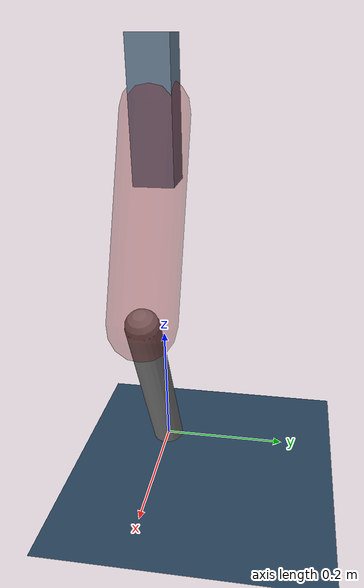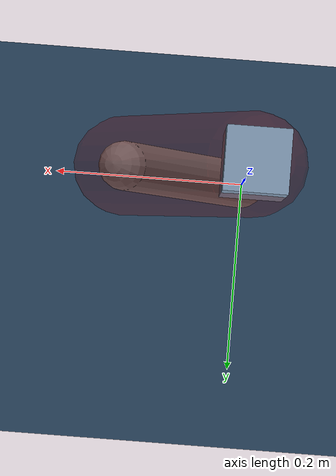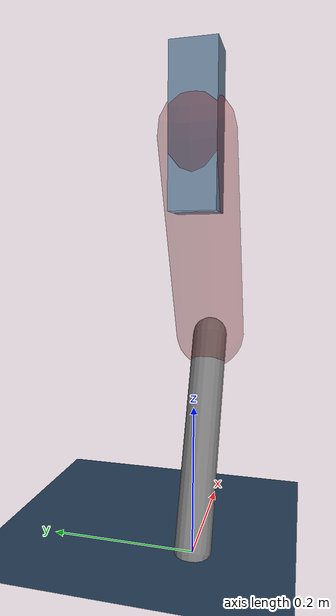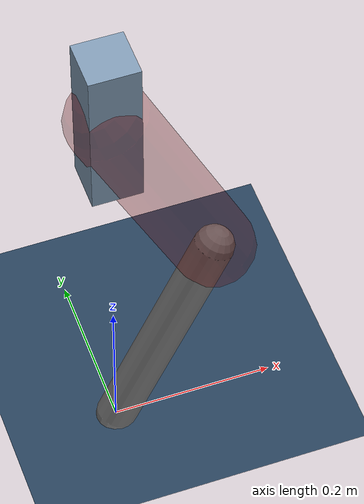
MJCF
<mujoco model="Hopper2D">
	<compiler inertiafromgeom="true" angle="radian" />
	<option timestep="0.001" integrator="implicit" cone="elliptic" solver="Newton" tolerance="1e-10" />

	<default>
		<geom contype="1" conaffinity="1" condim="3" friction="2 0.005 0.0001" solref="0.005 1" />
		<joint limited="true" damping="0.1" />
	</default>

	<asset>
		<texture name="skybox" type="skybox" builtin="gradient" rgb1=".4 .6 .8" rgb2="0 0 0" width="800" height="800" />
		<texture name="grid" type="2d" builtin="checker" rgb1=".1 .2 .3" rgb2=".2 .3 .4" width="300" height="300" mark="edge" markrgb=".2 .3 .4" />
		<material name="ground" texture="grid" texrepeat="1 1" texuniform="true" reflectance="0.1" />
		<material name="leg" rgba="0.5 0.6 0.7 1" />
	</asset>

	<worldbody>

		<geom name="floor" type="plane" size="5 5 0.25" material="ground" />

		<light directional="false" diffuse="0.8 0.8 0.8" specular="0.3 0.3 0.3" pos="0 0 2" dir="0 0 -1" />
		<light mode="targetbodycom" target="base" directional="false" diffuse="0.8 0.8 0.8" specular="0.3 0.3 0.3" pos="0 0 2" dir="0 0 -1" />

		<camera name="fixed" pos="0 -2 1" xyaxes="1 0 0 0 0 1" />
		<camera name="tracking" mode="trackcom" pos="0 -3 1" />

		<body name="root" pos="0 0 0.552409981547026">
			<joint name="slide_x" type="slide" axis="1 0 0" range="-100 100" />
			<joint name="slide_z" type="slide" axis="0 0 1" range="0 10" />

			<body name="base" pos="0 0 0">
				<geom name="torso" type="box" size="0.03 0.03 0.1" mass="2.31" material="leg" />

				<body name="link1" pos="0 0 0" euler="0 1.137346872768357 0">
					<joint type="hinge" axis="0 -1 0" pos="0 0 0" name="hinge1" limited="true" range="-3.14 3.14" stiffness="0" damping="0.1" />
					<geom name="thigh" type="capsule" fromto="0 0 0 0.2987379733174099 0 0" size="0.05" rgba="0.5 0 0 0.3" mass="0.9852925279570068" />

					<body name="link2" pos="0.2987379733174099 0 0" euler="0 0.8530072841564494 0">
						<joint type="hinge" axis="0 -1 0" pos="0 0 0" name="hinge2" limited="true" range="-3.14 3.14" stiffness="0" damping="0.1" />
						<geom name="shank" type="capsule" fromto="0 0 0 0.308012800420848 0 0" size="0.025" mass="0.4899102403366784" />

					</body>
				</body>
			</body>
		</body>
	</worldbody>

	<actuator>
		<motor name="torque1" joint="hinge1" ctrlrange="-57.17131084104691 57.17131084104691" ctrllimited="true" gear="1" />
		<motor name="torque2" joint="hinge2" ctrlrange="-79.24199601801328 79.24199601801328" ctrllimited="true" gear="1" />
	</actuator>
</mujoco>
